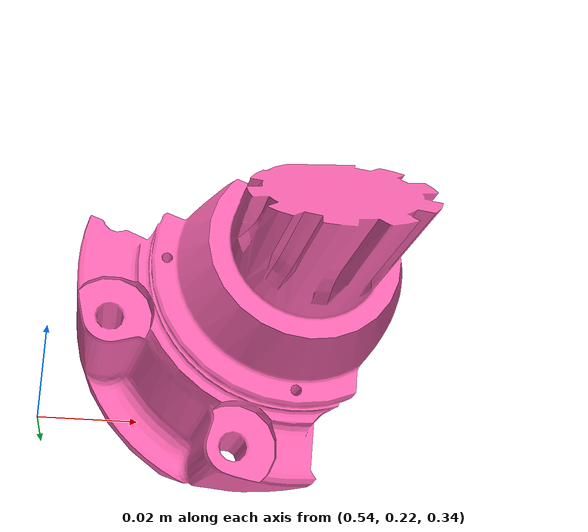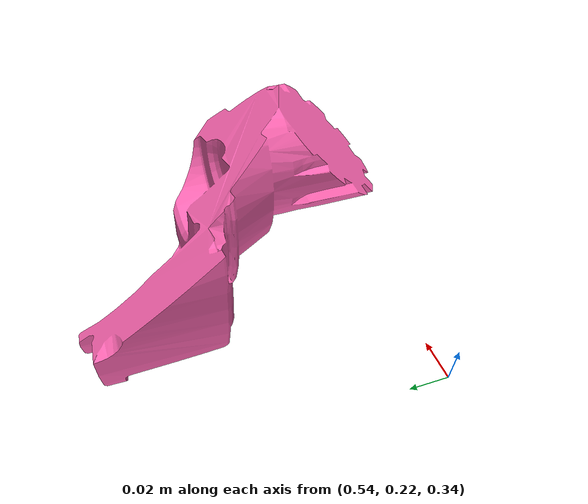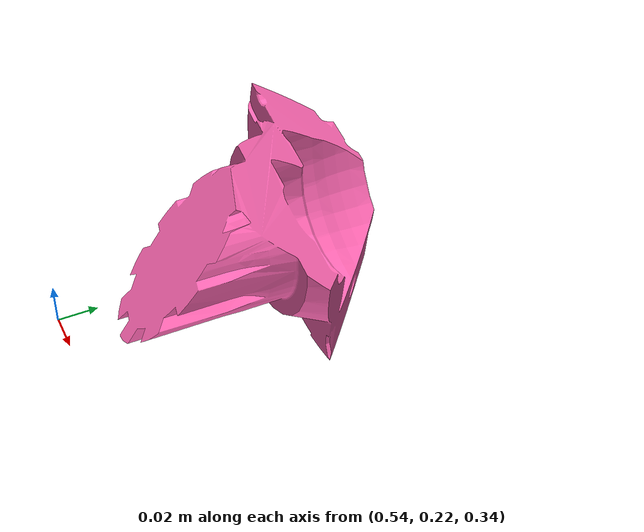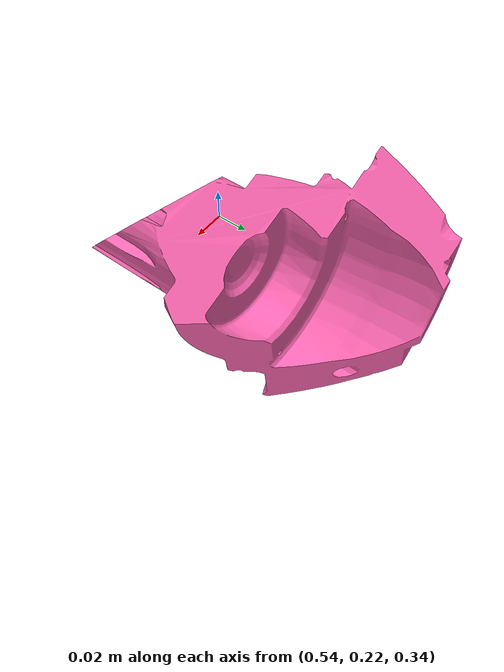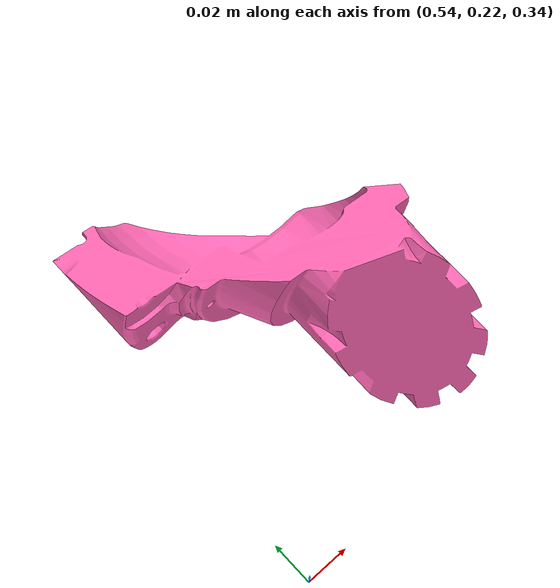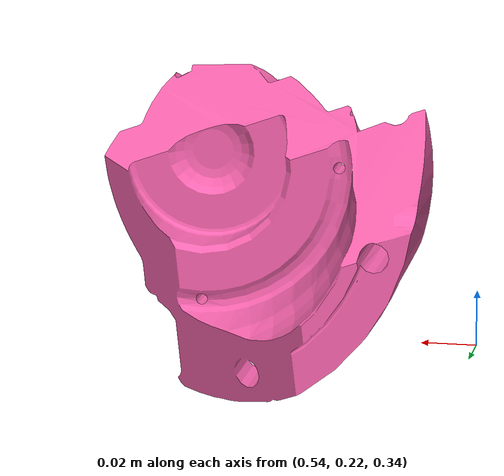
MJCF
<?xml version="1.0"?>
<mujoco model="d435i_cam">

  <!-- найдёт OBJ-файлы там же, где основная сцена -->
  <compiler meshdir="assets" angle="radian"/>

  <asset>
    <mesh name="fractured_part"   file="reaxis_fractured_part_1.stl" scale="0.1 0.1 0.1"/>
  </asset>

  <worldbody>
    <body name="fractured_body" pos="0.6 0.3 0.4">
        <!-- инерция тела -->
        <inertial pos="0 0 0" mass="0.05"
                  diaginertia="2e-4 2e-4 2e-4"/>

        <!-- свободный сустав с демпфированием -->
        <joint name="root" type="free" damping="1e-4"/>

        <!-- визуальный меш (не участвует в коллизиях) -->
        <geom type="mesh" mesh="fractured_part"
              rgba="1 .4 .7 1" group="1"
              contype="0" conaffinity="0" mass="0"/>

        <!-- коллизионная геометрия -->
        <geom type="mesh" mesh="fractured_part"
              group="0" condim="3"
              friction="1 0.5 0.005"
              margin="0.003"
              solimp="0.99 0.99 0.01"
              solref="0.02 1"/>
    </body>
  </worldbody>
</mujoco>
